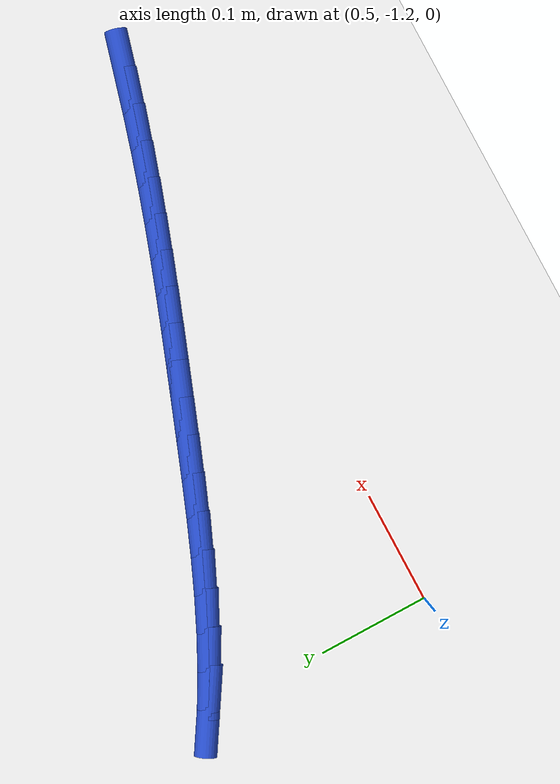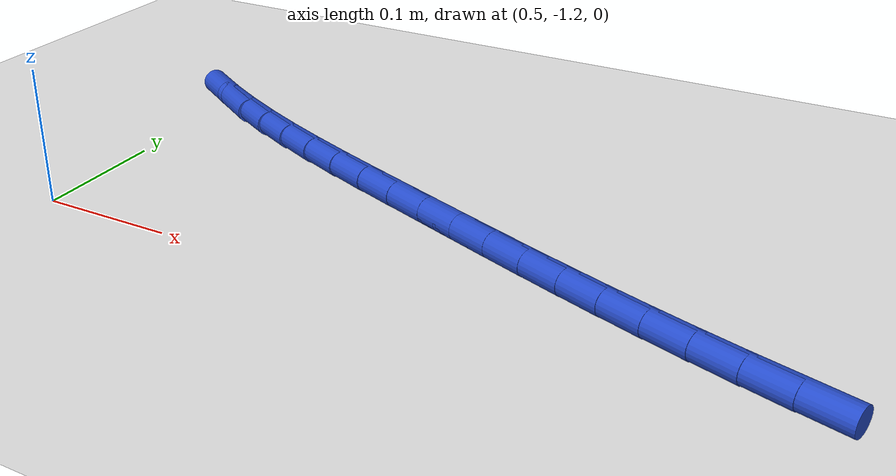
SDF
<sdf version="1.6">
 <world name="default">
  <model name="ground_plane">
   <static>1</static>
   <link name="link">
    <collision name="collision">
     <geometry><plane><normal>0 0 1</normal><size>100 100</size></plane></geometry>
     <surface><friction><ode><mu>100</mu><mu2>50</mu2></ode></friction></surface>
    </collision>
    <visual name="visual">
     <cast_shadows>0</cast_shadows>
     <geometry><plane><normal>0 0 1</normal><size>100 100</size></plane></geometry>
     <material>
      <script><uri>file://media/materials/scripts/gazebo.material</uri><name>Gazebo/WhiteGlow</name></script>
     </material>
    </visual>
   </link>
  </model>
  <model name="line">
   <link name="link_158">
    <pose>1.0185902165422451 -1.187775642306915 0.01 0 1.57 -0.26914758809565953</pose>
    <collision name="collision">
     <geometry><cylinder><radius>0.01</radius><length>0.08</length></cylinder></geometry>
    </collision>
    <visual name="visual">
     <material>
      <script><name>Gazebo/Blue</name><uri>file://media/materials/scripts/gazebo.material</uri></script>
     </material>
     <geometry><cylinder><radius>0.01</radius><length>0.08</length></cylinder></geometry>
    </visual>
   </link>
   <link name="link_159">
    <pose>0.9862887676056434 -1.1788655896476536 0.01 0 1.57 -0.2870762083590917</pose>
    <collision name="collision">
     <geometry><cylinder><radius>0.01</radius><length>0.08</length></cylinder></geometry>
    </collision>
    <visual name="visual">
     <material>
      <script><name>Gazebo/Blue</name><uri>file://media/materials/scripts/gazebo.material</uri></script>
     </material>
     <geometry><cylinder><radius>0.01</radius><length>0.08</length></cylinder></geometry>
    </visual>
   </link>
   <link name="link_160">
    <pose>0.9548125055173287 -1.1695728088060655 0.01 0 1.57 -0.3035657234770447</pose>
    <collision name="collision">
     <geometry><cylinder><radius>0.01</radius><length>0.08</length></cylinder></geometry>
    </collision>
    <visual name="visual">
     <material>
      <script><name>Gazebo/Blue</name><uri>file://media/materials/scripts/gazebo.material</uri></script>
     </material>
     <geometry><cylinder><radius>0.01</radius><length>0.08</length></cylinder></geometry>
    </visual>
   </link>
   <link name="link_161">
    <pose>0.9240133193001623 -1.1599250405977528 0.01 0 1.57 -0.3183257057513864</pose>
    <collision name="collision">
     <geometry><cylinder><radius>0.01</radius><length>0.08</length></cylinder></geometry>
    </collision>
    <visual name="visual">
     <material>
      <script><name>Gazebo/Blue</name><uri>file://media/materials/scripts/gazebo.material</uri></script>
     </material>
     <geometry><cylinder><radius>0.01</radius><length>0.08</length></cylinder></geometry>
    </visual>
   </link>
   <link name="link_162">
    <pose>0.8937430979770039 -1.1499500258383173 0.01 0 1.57 -0.3310975861948959</pose>
    <collision name="collision">
     <geometry><cylinder><radius>0.01</radius><length>0.08</length></cylinder></geometry>
    </collision>
    <visual name="visual">
     <material>
      <script><name>Gazebo/Blue</name><uri>file://media/materials/scripts/gazebo.material</uri></script>
     </material>
     <geometry><cylinder><radius>0.01</radius><length>0.08</length></cylinder></geometry>
    </visual>
   </link>
   <link name="link_163">
    <pose>0.8638537305707147 -1.1396755053433616 0.01 0 1.57 -0.3416666133669419</pose>
    <collision name="collision">
     <geometry><cylinder><radius>0.01</radius><length>0.08</length></cylinder></geometry>
    </collision>
    <visual name="visual">
     <material>
      <script><name>Gazebo/Blue</name><uri>file://media/materials/scripts/gazebo.material</uri></script>
     </material>
     <geometry><cylinder><radius>0.01</radius><length>0.08</length></cylinder></geometry>
    </visual>
   </link>
   <link name="link_164">
    <pose>0.8341971061041538 -1.1291292199284866 0.01 0 1.57 -0.3498713728585584</pose>
    <collision name="collision">
     <geometry><cylinder><radius>0.01</radius><length>0.08</length></cylinder></geometry>
    </collision>
    <visual name="visual">
     <material>
      <script><name>Gazebo/Blue</name><uri>file://media/materials/scripts/gazebo.material</uri></script>
     </material>
     <geometry><cylinder><radius>0.01</radius><length>0.08</length></cylinder></geometry>
    </visual>
   </link>
   <link name="link_165">
    <pose>0.8046251136001831 -1.1183389104092947 0.01 0 1.57 -0.355610144434918</pose>
    <collision name="collision">
     <geometry><cylinder><radius>0.01</radius><length>0.08</length></cylinder></geometry>
    </collision>
    <visual name="visual">
     <material>
      <script><name>Gazebo/Blue</name><uri>file://media/materials/scripts/gazebo.material</uri></script>
     </material>
     <geometry><cylinder><radius>0.01</radius><length>0.08</length></cylinder></geometry>
    </visual>
   </link>
   <link name="link_166">
    <pose>0.7749896420816628 -1.107332317601388 0.01 0 1.57 -0.35884372644196266</pose>
    <collision name="collision">
     <geometry><cylinder><radius>0.01</radius><length>0.08</length></cylinder></geometry>
    </collision>
    <visual name="visual">
     <material>
      <script><name>Gazebo/Blue</name><uri>file://media/materials/scripts/gazebo.material</uri></script>
     </material>
     <geometry><cylinder><radius>0.01</radius><length>0.08</length></cylinder></geometry>
    </visual>
   </link>
   <link name="link_167">
    <pose>0.7451425805714529 -1.096137182320368 0.01 0 1.57 -0.3597918647081861</pose>
    <collision name="collision">
     <geometry><cylinder><radius>0.01</radius><length>0.08</length></cylinder></geometry>
    </collision>
    <visual name="visual">
     <material>
      <script><name>Gazebo/Blue</name><uri>file://media/materials/scripts/gazebo.material</uri></script>
     </material>
     <geometry><cylinder><radius>0.01</radius><length>0.08</length></cylinder></geometry>
    </visual>
   </link>
   <link name="link_168">
    <pose>0.7149434657549392 -1.0847773248501489 0.01 0 1.57 -0.36273192482583183</pose>
    <collision name="collision">
     <geometry><cylinder><radius>0.01</radius><length>0.08</length></cylinder></geometry>
    </collision>
    <visual name="visual">
     <material>
      <script><name>Gazebo/Blue</name><uri>file://media/materials/scripts/gazebo.material</uri></script>
     </material>
     <geometry><cylinder><radius>0.01</radius><length>0.08</length></cylinder></geometry>
    </visual>
   </link>
   <link name="link_169">
    <pose>0.6844171432937932 -1.0731918207467173 0.01 0 1.57 -0.37165737672160903</pose>
    <collision name="collision">
     <geometry><cylinder><radius>0.01</radius><length>0.08</length></cylinder></geometry>
    </collision>
    <visual name="visual">
     <material>
      <script><name>Gazebo/Blue</name><uri>file://media/materials/scripts/gazebo.material</uri></script>
     </material>
     <geometry><cylinder><radius>0.01</radius><length>0.08</length></cylinder></geometry>
    </visual>
   </link>
   <link name="link_170">
    <pose>0.6537480915492405 -1.061237910749856 0.01 0 1.57 -0.38668738789061513</pose>
    <collision name="collision">
     <geometry><cylinder><radius>0.01</radius><length>0.08</length></cylinder></geometry>
    </collision>
    <visual name="visual">
     <material>
      <script><name>Gazebo/Blue</name><uri>file://media/materials/scripts/gazebo.material</uri></script>
     </material>
     <geometry><cylinder><radius>0.01</radius><length>0.08</length></cylinder></geometry>
    </visual>
   </link>
   <link name="link_171">
    <pose>0.6231273008551877 -1.0487694972727433 0.01 0 1.57 -0.4079009434482653</pose>
    <collision name="collision">
     <geometry><cylinder><radius>0.01</radius><length>0.08</length></cylinder></geometry>
    </collision>
    <visual name="visual">
     <material>
      <script><name>Gazebo/Blue</name><uri>file://media/materials/scripts/gazebo.material</uri></script>
     </material>
     <geometry><cylinder><radius>0.01</radius><length>0.08</length></cylinder></geometry>
    </visual>
   </link>
   <link name="link_172">
    <pose>0.5927457615455406 -1.0356404827285597 0.01 0 1.57 -0.4354871402128525</pose>
    <collision name="collision">
     <geometry><cylinder><radius>0.01</radius><length>0.08</length></cylinder></geometry>
    </collision>
    <visual name="visual">
     <material>
      <script><name>Gazebo/Blue</name><uri>file://media/materials/scripts/gazebo.material</uri></script>
     </material>
     <geometry><cylinder><radius>0.01</radius><length>0.08</length></cylinder></geometry>
    </visual>
   </link>
   <link name="link_173">
    <pose>0.5627944639542054 -1.0217047695304853 0.01 0 1.57 -0.46972451040230767</pose>
    <collision name="collision">
     <geometry><cylinder><radius>0.01</radius><length>0.08</length></cylinder></geometry>
    </collision>
    <visual name="visual">
     <material>
      <script><name>Gazebo/Blue</name><uri>file://media/materials/scripts/gazebo.material</uri></script>
     </material>
     <geometry><cylinder><radius>0.01</radius><length>0.08</length></cylinder></geometry>
    </visual>
   </link>
   <link name="link_174">
    <pose>0.5334643984150875 -1.0068162600916981 0.01 0 1.57 -0.5109529798506482</pose>
    <collision name="collision">
     <geometry><cylinder><radius>0.01</radius><length>0.08</length></cylinder></geometry>
    </collision>
    <visual name="visual">
     <material>
      <script><name>Gazebo/Blue</name><uri>file://media/materials/scripts/gazebo.material</uri></script>
     </material>
     <geometry><cylinder><radius>0.01</radius><length>0.08</length></cylinder></geometry>
    </visual>
   </link>
   <link name="link_175">
    <pose>0.5049465552620936 -0.9908288568253795 0.01 0 1.57 -0.5595331213885992</pose>
    <collision name="collision">
     <geometry><cylinder><radius>0.01</radius><length>0.08</length></cylinder></geometry>
    </collision>
    <visual name="visual">
     <material>
      <script><name>Gazebo/Blue</name><uri>file://media/materials/scripts/gazebo.material</uri></script>
     </material>
     <geometry><cylinder><radius>0.01</radius><length>0.08</length></cylinder></geometry>
    </visual>
   </link>
  </model>
 </world>
</sdf>
